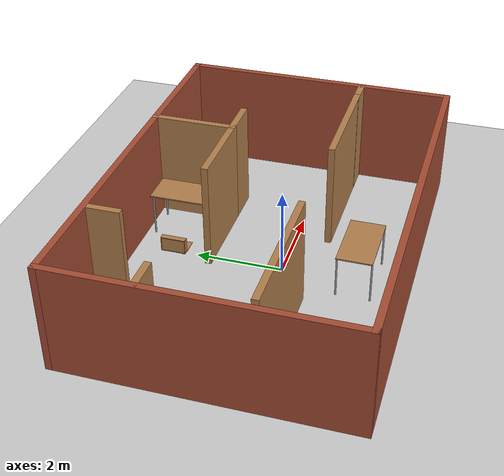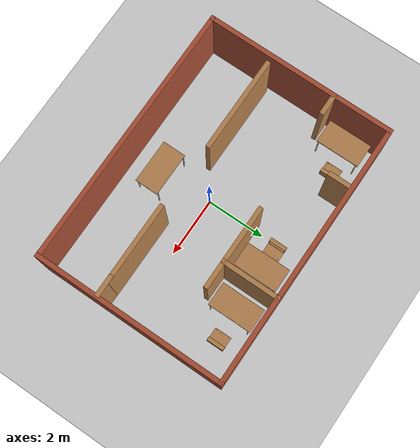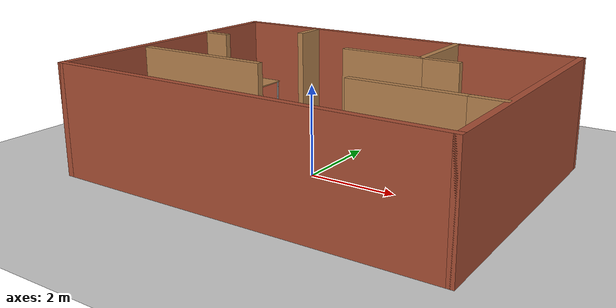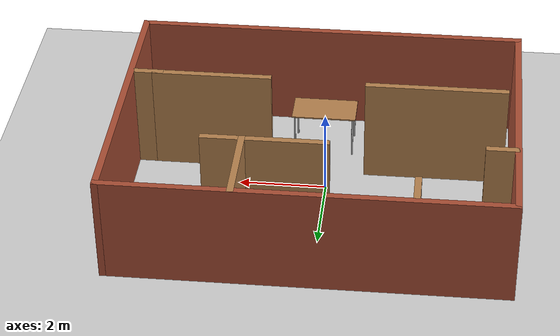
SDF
<sdf version="1.7">
 <world name="default">
  <light name="sun" type="directional">
   <pose>0 0 10 0 -0 0</pose>
   <diffuse>0.8 0.8 0.8 1</diffuse>
   <specular>0.2 0.2 0.2 1</specular>
   <attenuation>
    <range>1000</range>
    <constant>0.9</constant>
    <linear>0.01</linear>
    <quadratic>0.001</quadratic>
   </attenuation>
   <direction>-0.5 0.1 -0.9</direction>
   <spot><inner_angle>0</inner_angle><outer_angle>0</outer_angle><falloff>0</falloff></spot>
  </light>
  <model name="ground_plane">
   <static>1</static>
   <link name="link">
    <collision name="collision">
     <geometry><plane><normal>0 0 1</normal><size>100 100</size></plane></geometry>
     <surface><friction><ode><mu>100</mu><mu2>50</mu2></ode></friction></surface>
    </collision>
    <visual name="visual">
     <cast_shadows>0</cast_shadows>
     <geometry><plane><normal>0 0 1</normal><size>100 100</size></plane></geometry>
     <material>
      <script><uri>file://media/materials/scripts/gazebo.material</uri><name>Gazebo/Grey</name></script>
     </material>
    </visual>
   </link>
  </model>
  <gravity>0 0 -9.8</gravity>
  <magnetic_field>6e-06 2.3e-05 -4.2e-05</magnetic_field>
  <atmosphere type="adiabatic"/>
  <physics type="ode">
   <max_step_size>0.001</max_step_size>
   <real_time_factor>1</real_time_factor>
   <real_time_update_rate>1000</real_time_update_rate>
  </physics>
  <scene><ambient>0.4 0.4 0.4 1</ambient><background>0.7 0.7 0.7 1</background><shadows>1</shadows></scene>
  <audio><device>default</device></audio>
  <spherical_coordinates>
   <surface_model>EARTH_WGS84</surface_model>
   <latitude_deg>0</latitude_deg>
   <longitude_deg>0</longitude_deg>
   <elevation>0</elevation>
   <heading_deg>0</heading_deg>
  </spherical_coordinates>
  <model name="resworld">
   <pose>0.11808 0.137931 0 0 -0 0</pose>
   <link name="Wall_12">
    <collision name="Wall_12_Collision">
     <geometry><box><size>0.75 0.15 2.5</size></box></geometry>
     <pose>0 0 1.25 0 -0 0</pose>
    </collision>
    <visual name="Wall_12_Visual">
     <pose>0 0 1.25 0 -0 0</pose>
     <geometry><box><size>0.75 0.15 2.5</size></box></geometry>
     <material>
      <script><uri>file://media/materials/scripts/gazebo.material</uri><name>Gazebo/Wood</name></script>
      <ambient>1 1 1 1</ambient>
     </material>
     <meta><layer>0</layer></meta>
    </visual>
    <pose>4.055 -0.8875 0 0 -0 0</pose>
   </link>
   <link name="Wall_17">
    <collision name="Wall_17_Collision">
     <geometry><box><size>2 0.15 2.5</size></box></geometry>
     <pose>0 0 1.25 0 -0 0</pose>
    </collision>
    <visual name="Wall_17_Visual">
     <pose>0 0 1.25 0 -0 0</pose>
     <geometry><box><size>2 0.15 2.5</size></box></geometry>
     <material>
      <script><uri>file://media/materials/scripts/gazebo.material</uri><name>Gazebo/Wood</name></script>
      <ambient>1 1 1 1</ambient>
     </material>
     <meta><layer>0</layer></meta>
    </visual>
    <pose>1.565 2.4475 0 0 -0 -1.5708</pose>
   </link>
   <link name="Wall_19">
    <collision name="Wall_19_Collision">
     <geometry><box><size>0.75 0.15 2.5</size></box></geometry>
     <pose>0 0 1.25 0 -0 0</pose>
    </collision>
    <visual name="Wall_19_Visual">
     <pose>0 0 1.25 0 -0 0</pose>
     <geometry><box><size>0.75 0.15 2.5</size></box></geometry>
     <material>
      <script><uri>file://media/materials/scripts/gazebo.material</uri><name>Gazebo/Wood</name></script>
      <ambient>1 1 1 1</ambient>
     </material>
     <meta><layer>0</layer></meta>
    </visual>
    <pose>-4.095 1.4225 0 0 -0 0</pose>
   </link>
   <link name="Wall_23">
    <collision name="Wall_23_Collision">
     <geometry><box><size>2 0.15 2.5</size></box></geometry>
     <pose>0 0 1.25 0 -0 0</pose>
    </collision>
    <visual name="Wall_23_Visual">
     <pose>0 0 1.25 0 -0 0</pose>
     <geometry><box><size>2 0.15 2.5</size></box></geometry>
     <material>
      <script><uri>file://media/materials/scripts/gazebo.material</uri><name>Gazebo/Wood</name></script>
      <ambient>1 1 1 1</ambient>
     </material>
     <meta><layer>0</layer></meta>
    </visual>
    <pose>0.64 1.5225 0 0 -0 3.14159</pose>
   </link>
   <link name="Wall_26">
    <collision name="Wall_26_Collision">
     <geometry><box><size>1 0.15 2.5</size></box></geometry>
     <pose>0 0 1.25 0 -0 0</pose>
    </collision>
    <visual name="Wall_26_Visual">
     <pose>0 0 1.25 0 -0 0</pose>
     <geometry><box><size>1 0.15 2.5</size></box></geometry>
     <material>
      <script><uri>file://media/materials/scripts/gazebo.material</uri><name>Gazebo/Wood</name></script>
      <ambient>1 1 1 1</ambient>
     </material>
     <meta><layer>0</layer></meta>
    </visual>
    <pose>1.99 1.5225 0 0 -0 0</pose>
   </link>
   <link name="Wall_5">
    <collision name="Wall_5_Collision">
     <geometry><box><size>6.5 0.15 2.5</size></box></geometry>
     <pose>0 0 1.25 0 -0 0</pose>
    </collision>
    <visual name="Wall_5_Visual">
     <pose>0 0 1.25 0 -0 0</pose>
     <geometry><box><size>6.5 0.15 2.5</size></box></geometry>
     <material>
      <script><uri>file://media/materials/scripts/gazebo.material</uri><name>Gazebo/Bricks</name></script>
      <ambient>1 1 1 1</ambient>
     </material>
     <meta><layer>0</layer></meta>
    </visual>
    <pose>-4.425 0.2075 0 0 -0 -1.5708</pose>
   </link>
   <link name="Wall_6">
    <collision name="Wall_6_Collision">
     <geometry><box><size>9 0.15 2.5</size></box></geometry>
     <pose>0 0 1.25 0 -0 0</pose>
    </collision>
    <visual name="Wall_6_Visual">
     <pose>0 0 1.25 0 -0 0</pose>
     <geometry><box><size>9 0.15 2.5</size></box></geometry>
     <material>
      <script><uri>file://media/materials/scripts/gazebo.material</uri><name>Gazebo/Bricks</name></script>
      <ambient>1 1 1 1</ambient>
     </material>
     <meta><layer>0</layer></meta>
    </visual>
    <pose>0 -2.9675 0 0 -0 0</pose>
   </link>
   <link name="Wall_7">
    <collision name="Wall_7_Collision">
     <geometry><box><size>6.5 0.15 2.5</size></box></geometry>
     <pose>0 0 1.25 0 -0 0</pose>
    </collision>
    <visual name="Wall_7_Visual">
     <pose>0 0 1.25 0 -0 0</pose>
     <geometry><box><size>6.5 0.15 2.5</size></box></geometry>
     <material>
      <script><uri>file://media/materials/scripts/gazebo.material</uri><name>Gazebo/Bricks</name></script>
      <ambient>1 1 1 1</ambient>
     </material>
     <meta><layer>0</layer></meta>
    </visual>
    <pose>4.425 0.2075 0 0 -0 1.5708</pose>
   </link>
   <link name="Wall_8">
    <collision name="Wall_8_Collision">
     <geometry><box><size>9 0.15 2.5</size></box></geometry>
     <pose>0 0 1.25 0 -0 0</pose>
    </collision>
    <visual name="Wall_8_Visual">
     <pose>0 0 1.25 0 -0 0</pose>
     <geometry><box><size>9 0.15 2.5</size></box></geometry>
     <material>
      <script><uri>file://media/materials/scripts/gazebo.material</uri><name>Gazebo/Bricks</name></script>
      <ambient>1 1 1 1</ambient>
     </material>
     <meta><layer>0</layer></meta>
    </visual>
    <pose>0 3.3825 0 0 -0 3.14159</pose>
   </link>
   <static>1</static>
  </model>
  <model name="table">
   <static>1</static>
   <link name="link">
    <collision name="surface">
     <pose>0 0 1 0 -0 0</pose>
     <geometry><box><size>1.5 0.8 0.03</size></box></geometry>
     <surface><friction><ode><mu>0.6</mu><mu2>0.6</mu2></ode></friction></surface>
    </collision>
    <visual name="visual1">
     <pose>0 0 1 0 -0 0</pose>
     <geometry><box><size>1.5 0.8 0.03</size></box></geometry>
     <material>
      <script><uri>file://media/materials/scripts/gazebo.material</uri><name>Gazebo/Wood</name></script>
     </material>
    </visual>
    <collision name="front_left_leg">
     <pose>0.68 0.38 0.5 0 -0 0</pose>
     <geometry><cylinder><radius>0.02</radius><length>1</length></cylinder></geometry>
    </collision>
    <visual name="front_left_leg">
     <pose>0.68 0.38 0.5 0 -0 0</pose>
     <geometry><cylinder><radius>0.02</radius><length>1</length></cylinder></geometry>
     <material>
      <script><uri>file://media/materials/scripts/gazebo.material</uri><name>Gazebo/Grey</name></script>
     </material>
    </visual>
    <collision name="front_right_leg">
     <pose>0.68 -0.38 0.5 0 -0 0</pose>
     <geometry><cylinder><radius>0.02</radius><length>1</length></cylinder></geometry>
    </collision>
    <visual name="front_right_leg">
     <pose>0.68 -0.38 0.5 0 -0 0</pose>
     <geometry><cylinder><radius>0.02</radius><length>1</length></cylinder></geometry>
     <material>
      <script><uri>file://media/materials/scripts/gazebo.material</uri><name>Gazebo/Grey</name></script>
     </material>
    </visual>
    <collision name="back_right_leg">
     <pose>-0.68 -0.38 0.5 0 -0 0</pose>
     <geometry><cylinder><radius>0.02</radius><length>1</length></cylinder></geometry>
    </collision>
    <visual name="back_right_leg">
     <pose>-0.68 -0.38 0.5 0 -0 0</pose>
     <geometry><cylinder><radius>0.02</radius><length>1</length></cylinder></geometry>
     <material>
      <script><uri>file://media/materials/scripts/gazebo.material</uri><name>Gazebo/Grey</name></script>
     </material>
    </visual>
    <collision name="back_left_leg">
     <pose>-0.68 0.38 0.5 0 -0 0</pose>
     <geometry><cylinder><radius>0.02</radius><length>1</length></cylinder></geometry>
    </collision>
    <visual name="back_left_leg">
     <pose>-0.68 0.38 0.5 0 -0 0</pose>
     <geometry><cylinder><radius>0.02</radius><length>1</length></cylinder></geometry>
     <material>
      <script><uri>file://media/materials/scripts/gazebo.material</uri><name>Gazebo/Grey</name></script>
     </material>
    </visual>
   </link>
   <pose>2.40111 2.62285 0 0 0 -1.56768</pose>
  </model>
  <model name="table_clone">
   <static>1</static>
   <link name="link">
    <collision name="surface">
     <pose>0 0 1 0 -0 0</pose>
     <geometry><box><size>1.5 0.8 0.03</size></box></geometry>
     <surface><friction><ode><mu>0.6</mu><mu2>0.6</mu2></ode></friction></surface>
    </collision>
    <visual name="visual1">
     <pose>0 0 1 0 -0 0</pose>
     <geometry><box><size>1.5 0.8 0.03</size></box></geometry>
     <material>
      <script><uri>file://media/materials/scripts/gazebo.material</uri><name>Gazebo/Wood</name></script>
     </material>
    </visual>
    <collision name="front_left_leg">
     <pose>0.68 0.38 0.5 0 -0 0</pose>
     <geometry><cylinder><radius>0.02</radius><length>1</length></cylinder></geometry>
    </collision>
    <visual name="front_left_leg">
     <pose>0.68 0.38 0.5 0 -0 0</pose>
     <geometry><cylinder><radius>0.02</radius><length>1</length></cylinder></geometry>
     <material>
      <script><uri>file://media/materials/scripts/gazebo.material</uri><name>Gazebo/Grey</name></script>
     </material>
    </visual>
    <collision name="front_right_leg">
     <pose>0.68 -0.38 0.5 0 -0 0</pose>
     <geometry><cylinder><radius>0.02</radius><length>1</length></cylinder></geometry>
    </collision>
    <visual name="front_right_leg">
     <pose>0.68 -0.38 0.5 0 -0 0</pose>
     <geometry><cylinder><radius>0.02</radius><length>1</length></cylinder></geometry>
     <material>
      <script><uri>file://media/materials/scripts/gazebo.material</uri><name>Gazebo/Grey</name></script>
     </material>
    </visual>
    <collision name="back_right_leg">
     <pose>-0.68 -0.38 0.5 0 -0 0</pose>
     <geometry><cylinder><radius>0.02</radius><length>1</length></cylinder></geometry>
    </collision>
    <visual name="back_right_leg">
     <pose>-0.68 -0.38 0.5 0 -0 0</pose>
     <geometry><cylinder><radius>0.02</radius><length>1</length></cylinder></geometry>
     <material>
      <script><uri>file://media/materials/scripts/gazebo.material</uri><name>Gazebo/Grey</name></script>
     </material>
    </visual>
    <collision name="back_left_leg">
     <pose>-0.68 0.38 0.5 0 -0 0</pose>
     <geometry><cylinder><radius>0.02</radius><length>1</length></cylinder></geometry>
    </collision>
    <visual name="back_left_leg">
     <pose>-0.68 0.38 0.5 0 -0 0</pose>
     <geometry><cylinder><radius>0.02</radius><length>1</length></cylinder></geometry>
     <material>
      <script><uri>file://media/materials/scripts/gazebo.material</uri><name>Gazebo/Grey</name></script>
     </material>
    </visual>
   </link>
   <pose>0.971069 2.57066 0 0 0 -1.56768</pose>
  </model>
  <model name="table_clone_clone">
   <static>1</static>
   <link name="link">
    <collision name="surface">
     <pose>0 0 1 0 -0 0</pose>
     <geometry><box><size>1.5 0.8 0.03</size></box></geometry>
     <surface><friction><ode><mu>0.6</mu><mu2>0.6</mu2></ode></friction></surface>
    </collision>
    <visual name="visual1">
     <pose>0 0 1 0 -0 0</pose>
     <geometry><box><size>1.5 0.8 0.03</size></box></geometry>
     <material>
      <script><uri>file://media/materials/scripts/gazebo.material</uri><name>Gazebo/Wood</name></script>
     </material>
    </visual>
    <collision name="front_left_leg">
     <pose>0.68 0.38 0.5 0 -0 0</pose>
     <geometry><cylinder><radius>0.02</radius><length>1</length></cylinder></geometry>
    </collision>
    <visual name="front_left_leg">
     <pose>0.68 0.38 0.5 0 -0 0</pose>
     <geometry><cylinder><radius>0.02</radius><length>1</length></cylinder></geometry>
     <material>
      <script><uri>file://media/materials/scripts/gazebo.material</uri><name>Gazebo/Grey</name></script>
     </material>
    </visual>
    <collision name="front_right_leg">
     <pose>0.68 -0.38 0.5 0 -0 0</pose>
     <geometry><cylinder><radius>0.02</radius><length>1</length></cylinder></geometry>
    </collision>
    <visual name="front_right_leg">
     <pose>0.68 -0.38 0.5 0 -0 0</pose>
     <geometry><cylinder><radius>0.02</radius><length>1</length></cylinder></geometry>
     <material>
      <script><uri>file://media/materials/scripts/gazebo.material</uri><name>Gazebo/Grey</name></script>
     </material>
    </visual>
    <collision name="back_right_leg">
     <pose>-0.68 -0.38 0.5 0 -0 0</pose>
     <geometry><cylinder><radius>0.02</radius><length>1</length></cylinder></geometry>
    </collision>
    <visual name="back_right_leg">
     <pose>-0.68 -0.38 0.5 0 -0 0</pose>
     <geometry><cylinder><radius>0.02</radius><length>1</length></cylinder></geometry>
     <material>
      <script><uri>file://media/materials/scripts/gazebo.material</uri><name>Gazebo/Grey</name></script>
     </material>
    </visual>
    <collision name="back_left_leg">
     <pose>-0.68 0.38 0.5 0 -0 0</pose>
     <geometry><cylinder><radius>0.02</radius><length>1</length></cylinder></geometry>
    </collision>
    <visual name="back_left_leg">
     <pose>-0.68 0.38 0.5 0 -0 0</pose>
     <geometry><cylinder><radius>0.02</radius><length>1</length></cylinder></geometry>
     <material>
      <script><uri>file://media/materials/scripts/gazebo.material</uri><name>Gazebo/Grey</name></script>
     </material>
    </visual>
   </link>
   <pose>-3.69897 2.52096 0 0 0 -1.56768</pose>
  </model>
  <model name="table_clone_clone_0">
   <static>1</static>
   <link name="link">
    <collision name="surface">
     <pose>0 0 1 0 -0 0</pose>
     <geometry><box><size>1.5 0.8 0.03</size></box></geometry>
     <surface><friction><ode><mu>0.6</mu><mu2>0.6</mu2></ode></friction></surface>
    </collision>
    <visual name="visual1">
     <pose>0 0 1 0 -0 0</pose>
     <geometry><box><size>1.5 0.8 0.03</size></box></geometry>
     <material>
      <script><uri>file://media/materials/scripts/gazebo.material</uri><name>Gazebo/Wood</name></script>
     </material>
    </visual>
    <collision name="front_left_leg">
     <pose>0.68 0.38 0.5 0 -0 0</pose>
     <geometry><cylinder><radius>0.02</radius><length>1</length></cylinder></geometry>
    </collision>
    <visual name="front_left_leg">
     <pose>0.68 0.38 0.5 0 -0 0</pose>
     <geometry><cylinder><radius>0.02</radius><length>1</length></cylinder></geometry>
     <material>
      <script><uri>file://media/materials/scripts/gazebo.material</uri><name>Gazebo/Grey</name></script>
     </material>
    </visual>
    <collision name="front_right_leg">
     <pose>0.68 -0.38 0.5 0 -0 0</pose>
     <geometry><cylinder><radius>0.02</radius><length>1</length></cylinder></geometry>
    </collision>
    <visual name="front_right_leg">
     <pose>0.68 -0.38 0.5 0 -0 0</pose>
     <geometry><cylinder><radius>0.02</radius><length>1</length></cylinder></geometry>
     <material>
      <script><uri>file://media/materials/scripts/gazebo.material</uri><name>Gazebo/Grey</name></script>
     </material>
    </visual>
    <collision name="back_right_leg">
     <pose>-0.68 -0.38 0.5 0 -0 0</pose>
     <geometry><cylinder><radius>0.02</radius><length>1</length></cylinder></geometry>
    </collision>
    <visual name="back_right_leg">
     <pose>-0.68 -0.38 0.5 0 -0 0</pose>
     <geometry><cylinder><radius>0.02</radius><length>1</length></cylinder></geometry>
     <material>
      <script><uri>file://media/materials/scripts/gazebo.material</uri><name>Gazebo/Grey</name></script>
     </material>
    </visual>
    <collision name="back_left_leg">
     <pose>-0.68 0.38 0.5 0 -0 0</pose>
     <geometry><cylinder><radius>0.02</radius><length>1</length></cylinder></geometry>
    </collision>
    <visual name="back_left_leg">
     <pose>-0.68 0.38 0.5 0 -0 0</pose>
     <geometry><cylinder><radius>0.02</radius><length>1</length></cylinder></geometry>
     <material>
      <script><uri>file://media/materials/scripts/gazebo.material</uri><name>Gazebo/Grey</name></script>
     </material>
    </visual>
   </link>
   <pose>0.159687 -1.73006 0 0 -0 3.13719</pose>
  </model>
  <model name="wooden_case_wooden_peg">
   <frame name="wooden_case::__model__" attached_to="wooden_case::base">
    <pose relative_to="__model__">0 0 0 0 -0 0</pose>
   </frame>
   <link name="wooden_case::base">
    <pose relative_to="wooden_case::__model__">0 0 0.024 0 -0 0</pose>
    <inertial>
     <pose>-0.022184 0 0.171592 0 -0 0</pose>
     <mass>3.96264</mass>
     <inertia>
      <ixx>0.213536</ixx>
      <ixy>0</ixy>
      <ixz>0.000779377</ixz>
      <iyy>0.0708943</iyy>
      <iyz>0</iyz>
      <izz>0.154604</izz>
     </inertia>
    </inertial>
    <collision name="collision_back">
     <pose>-0.053975 0 0.1778 0 -0 0</pose>
     <geometry><box><size>0.01905 0.5461 0.3175</size></box></geometry>
     <surface>
      <contact>
       <poissons_ratio>0.347</poissons_ratio>
       <elastic_modulus>8.8e+09</elastic_modulus>
       <ode><kp>100000</kp><kd>100</kd><max_vel>100</max_vel><min_depth>0.001</min_depth></ode>
      </contact>
      <friction>
       <torsional>
        <coefficient>1</coefficient>
        <use_patch_radius>0</use_patch_radius>
        <surface_radius>0.01</surface_radius>
       </torsional>
      </friction>
     </surface>
    </collision>
    <visual name="visual_back">
     <pose>-0.053975 0 0.1778 0 -0 0</pose>
     <geometry><box><size>0.01905 0.5461 0.3175</size></box></geometry>
     <material>
      <script><uri>file://media/materials/scripts/gazebo.material</uri><name>Gazebo/Wood</name></script>
     </material>
    </visual>
    <collision name="collision_bottom">
     <pose>0 0 0.009525 0 -0 0</pose>
     <geometry><box><size>0.127 0.5842 0.01905</size></box></geometry>
     <surface>
      <contact>
       <poissons_ratio>0.347</poissons_ratio>
       <elastic_modulus>8.8e+09</elastic_modulus>
       <ode><kp>100000</kp><kd>100</kd><max_vel>100</max_vel><min_depth>0.001</min_depth></ode>
      </contact>
      <friction>
       <torsional>
        <coefficient>1</coefficient>
        <use_patch_radius>0</use_patch_radius>
        <surface_radius>0.01</surface_radius>
       </torsional>
      </friction>
     </surface>
    </collision>
    <visual name="visual_bottom">
     <pose>0 0 0.009525 0 -0 0</pose>
     <geometry><box><size>0.127 0.5842 0.01905</size></box></geometry>
     <material>
      <script><uri>file://media/materials/scripts/gazebo.material</uri><name>Gazebo/Wood</name></script>
     </material>
    </visual>
    <collision name="collision_top">
     <pose>0 0 0.346075 0 -0 0</pose>
     <geometry><box><size>0.127 0.5842 0.01905</size></box></geometry>
     <surface>
      <contact>
       <poissons_ratio>0.347</poissons_ratio>
       <elastic_modulus>8.8e+09</elastic_modulus>
       <ode><kp>100000</kp><kd>100</kd><max_vel>100</max_vel><min_depth>0.001</min_depth></ode>
      </contact>
      <friction>
       <torsional>
        <coefficient>1</coefficient>
        <use_patch_radius>0</use_patch_radius>
        <surface_radius>0.01</surface_radius>
       </torsional>
      </friction>
     </surface>
    </collision>
    <visual name="visual_top">
     <pose>0 0 0.346075 0 -0 0</pose>
     <geometry><box><size>0.127 0.5842 0.01905</size></box></geometry>
     <material>
      <script><uri>file://media/materials/scripts/gazebo.material</uri><name>Gazebo/Wood</name></script>
     </material>
    </visual>
    <collision name="collision_left">
     <pose>0 -0.282575 0.1778 0 -0 0</pose>
     <geometry><box><size>0.127 0.01905 0.3175</size></box></geometry>
     <surface>
      <contact>
       <poissons_ratio>0.347</poissons_ratio>
       <elastic_modulus>8.8e+09</elastic_modulus>
       <ode><kp>100000</kp><kd>100</kd><max_vel>100</max_vel><min_depth>0.001</min_depth></ode>
      </contact>
      <friction>
       <torsional>
        <coefficient>1</coefficient>
        <use_patch_radius>0</use_patch_radius>
        <surface_radius>0.01</surface_radius>
       </torsional>
      </friction>
     </surface>
    </collision>
    <visual name="visual_left">
     <pose>0 -0.282575 0.1778 0 -0 0</pose>
     <geometry><box><size>0.127 0.01905 0.3175</size></box></geometry>
     <material>
      <script><uri>file://media/materials/scripts/gazebo.material</uri><name>Gazebo/Wood</name></script>
     </material>
    </visual>
    <collision name="collision_right">
     <pose>0 0.282575 0.1778 0 -0 0</pose>
     <geometry><box><size>0.127 0.01905 0.3175</size></box></geometry>
     <surface>
      <contact>
       <poissons_ratio>0.347</poissons_ratio>
       <elastic_modulus>8.8e+09</elastic_modulus>
       <ode><kp>100000</kp><kd>100</kd><max_vel>100</max_vel><min_depth>0.001</min_depth></ode>
      </contact>
      <friction>
       <torsional>
        <coefficient>1</coefficient>
        <use_patch_radius>0</use_patch_radius>
        <surface_radius>0.01</surface_radius>
       </torsional>
      </friction>
     </surface>
    </collision>
    <visual name="visual_right">
     <pose>0 0.282575 0.1778 0 -0 0</pose>
     <geometry><box><size>0.127 0.01905 0.3175</size></box></geometry>
     <material>
      <script><uri>file://media/materials/scripts/gazebo.material</uri><name>Gazebo/Wood</name></script>
     </material>
    </visual>
    <collision name="collision_block_left">
     <pose>0.0095 -0.2151 -0.012 0 -0 0</pose>
     <geometry><box><size>0.108 0.05 0.024</size></box></geometry>
     <surface>
      <contact>
       <poissons_ratio>0.347</poissons_ratio>
       <elastic_modulus>8.8e+09</elastic_modulus>
       <ode><kp>100000</kp><kd>100</kd><max_vel>100</max_vel><min_depth>0.001</min_depth></ode>
      </contact>
      <friction>
       <torsional>
        <coefficient>1</coefficient>
        <use_patch_radius>0</use_patch_radius>
        <surface_radius>0.01</surface_radius>
       </torsional>
      </friction>
     </surface>
    </collision>
    <visual name="visual_block_left">
     <pose>0.0095 -0.2151 -0.012 0 -0 0</pose>
     <geometry><box><size>0.108 0.05 0.024</size></box></geometry>
     <material>
      <script><uri>file://media/materials/scripts/gazebo.material</uri><name>Gazebo/Wood</name></script>
     </material>
    </visual>
    <collision name="collision_block_right">
     <pose>0.0095 0.2151 -0.012 0 -0 0</pose>
     <geometry><box><size>0.108 0.05 0.024</size></box></geometry>
     <surface>
      <contact>
       <poissons_ratio>0.347</poissons_ratio>
       <elastic_modulus>8.8e+09</elastic_modulus>
       <ode><kp>100000</kp><kd>100</kd><max_vel>100</max_vel><min_depth>0.001</min_depth></ode>
      </contact>
      <friction>
       <torsional>
        <coefficient>1</coefficient>
        <use_patch_radius>0</use_patch_radius>
        <surface_radius>0.01</surface_radius>
       </torsional>
      </friction>
     </surface>
    </collision>
    <visual name="visual_block_right">
     <pose>0.0095 0.2151 -0.012 0 -0 0</pose>
     <geometry><box><size>0.108 0.05 0.024</size></box></geometry>
     <material>
      <script><uri>file://media/materials/scripts/gazebo.material</uri><name>Gazebo/Wood</name></script>
     </material>
    </visual>
   </link>
   <link name="wooden_case::lid">
    <pose relative_to="wooden_case::__model__">0.243775 0 0.009525 0 -0 0</pose>
    <inertial>
     <mass>1.97874</mass>
     <inertia>
      <ixx>0.0563367</ixx>
      <ixy>0</ixy>
      <ixz>0</ixz>
      <iyy>0.020911</iyy>
      <iyz>0</iyz>
      <izz>0.0771281</izz>
     </inertia>
    </inertial>
    <collision name="collision">
     <geometry><box><size>0.3556 0.5842 0.01905</size></box></geometry>
     <surface>
      <contact>
       <poissons_ratio>0.347</poissons_ratio>
       <elastic_modulus>8.8e+09</elastic_modulus>
       <ode><kp>100000</kp><kd>100</kd><max_vel>100</max_vel><min_depth>0.001</min_depth></ode>
      </contact>
      <friction>
       <torsional>
        <coefficient>1</coefficient>
        <use_patch_radius>0</use_patch_radius>
        <surface_radius>0.01</surface_radius>
       </torsional>
      </friction>
     </surface>
    </collision>
    <visual name="visual">
     <geometry><box><size>0.3556 0.5842 0.01905</size></box></geometry>
     <material>
      <script><uri>file://media/materials/scripts/gazebo.material</uri><name>Gazebo/Wood</name></script>
     </material>
    </visual>
    <visual name="tee_nut_1">
     <pose>0.122 -0.216 0 0 -0 0</pose>
     <geometry><cylinder><radius>0.00635</radius><length>0.0192405</length></cylinder></geometry>
     <material>
      <script><uri>file://media/materials/scripts/gazebo.material</uri><name>Gazebo/Grey</name></script>
     </material>
    </visual>
    <visual name="tee_nut_2">
     <pose>0.122 -0.088 0 0 -0 0</pose>
     <geometry><cylinder><radius>0.00635</radius><length>0.0192405</length></cylinder></geometry>
     <material>
      <script><uri>file://media/materials/scripts/gazebo.material</uri><name>Gazebo/Grey</name></script>
     </material>
    </visual>
    <visual name="tee_nut_3">
     <pose>0.122 0.088 0 0 -0 0</pose>
     <geometry><cylinder><radius>0.00635</radius><length>0.0192405</length></cylinder></geometry>
     <material>
      <script><uri>file://media/materials/scripts/gazebo.material</uri><name>Gazebo/Grey</name></script>
     </material>
    </visual>
    <visual name="tee_nut_4">
     <pose>0.122 0.216 0 0 -0 0</pose>
     <geometry><cylinder><radius>0.00635</radius><length>0.0192405</length></cylinder></geometry>
     <material>
      <script><uri>file://media/materials/scripts/gazebo.material</uri><name>Gazebo/Grey</name></script>
     </material>
    </visual>
   </link>
   <joint name="wooden_case::lid_hinge" type="revolute">
    <pose>-0.1778 0 0.01905 0 -0 0</pose>
    <parent>wooden_case::base</parent>
    <child>wooden_case::lid</child>
    <axis>
     <xyz>0 1 0</xyz>
     <limit><upper>0.523599</upper><lower>-1.5708</lower></limit>
     <dynamics><spring_reference>0</spring_reference><spring_stiffness>0</spring_stiffness></dynamics>
    </axis>
   </joint>
   <frame name="peg::__model__" attached_to="peg::link">
    <pose relative_to="__model__">0.365774 0.216 0.01905 0 -0 0</pose>
   </frame>
   <link name="peg::link">
    <pose relative_to="peg::__model__">0 0 0.04 0 -0 0</pose>
    <inertial>
     <mass>0.0175</mass>
     <inertia>
      <ixx>9.74923e-06</ixx>
      <ixy>0</ixy>
      <ixz>0</ixz>
      <iyy>9.74923e-06</iyy>
      <iyz>0</iyz>
      <izz>8.31797e-07</izz>
     </inertia>
    </inertial>
    <collision name="collision">
     <geometry><cylinder><radius>0.00975</radius><length>0.08</length></cylinder></geometry>
     <surface>
      <contact>
       <poissons_ratio>0.347</poissons_ratio>
       <elastic_modulus>8.8e+09</elastic_modulus>
       <ode><kp>100000</kp><kd>100</kd><max_vel>100</max_vel><min_depth>0.001</min_depth></ode>
      </contact>
      <friction>
       <torsional>
        <coefficient>1</coefficient>
        <use_patch_radius>0</use_patch_radius>
        <surface_radius>0.01</surface_radius>
       </torsional>
      </friction>
     </surface>
    </collision>
    <visual name="visual">
     <geometry><cylinder><radius>0.00975</radius><length>0.08</length></cylinder></geometry>
     <material>
      <script><uri>file://media/materials/scripts/gazebo.material</uri><name>Gazebo/Wood</name></script>
     </material>
    </visual>
   </link>
   <joint name="case_peg" type="revolute">
    <child>peg::link</child>
    <parent>wooden_case::lid</parent>
    <axis>
     <xyz>0 0 1</xyz>
     <limit><upper>0</upper><lower>0</lower></limit>
     <dynamics><spring_reference>0</spring_reference><spring_stiffness>0</spring_stiffness></dynamics>
    </axis>
   </joint>
   <pose>-0.019223 2.56146 -0.001057 -1e-06 -0.000429 0</pose>
  </model>
  <model name="wooden_case_wooden_peg_clone">
   <frame name="wooden_case::__model__" attached_to="wooden_case::base">
    <pose relative_to="__model__">0 0 0 0 -0 0</pose>
   </frame>
   <link name="wooden_case::base">
    <pose relative_to="wooden_case::__model__">0 0 0.024 0 -0 0</pose>
    <inertial>
     <pose>-0.022184 0 0.171592 0 -0 0</pose>
     <mass>3.96264</mass>
     <inertia>
      <ixx>0.213536</ixx>
      <ixy>0</ixy>
      <ixz>0.000779377</ixz>
      <iyy>0.0708943</iyy>
      <iyz>0</iyz>
      <izz>0.154604</izz>
     </inertia>
    </inertial>
    <collision name="collision_back">
     <pose>-0.053975 0 0.1778 0 -0 0</pose>
     <geometry><box><size>0.01905 0.5461 0.3175</size></box></geometry>
     <surface>
      <contact>
       <poissons_ratio>0.347</poissons_ratio>
       <elastic_modulus>8.8e+09</elastic_modulus>
       <ode><kp>100000</kp><kd>100</kd><max_vel>100</max_vel><min_depth>0.001</min_depth></ode>
      </contact>
      <friction>
       <torsional>
        <coefficient>1</coefficient>
        <use_patch_radius>0</use_patch_radius>
        <surface_radius>0.01</surface_radius>
       </torsional>
      </friction>
     </surface>
    </collision>
    <visual name="visual_back">
     <pose>-0.053975 0 0.1778 0 -0 0</pose>
     <geometry><box><size>0.01905 0.5461 0.3175</size></box></geometry>
     <material>
      <script><uri>file://media/materials/scripts/gazebo.material</uri><name>Gazebo/Wood</name></script>
     </material>
    </visual>
    <collision name="collision_bottom">
     <pose>0 0 0.009525 0 -0 0</pose>
     <geometry><box><size>0.127 0.5842 0.01905</size></box></geometry>
     <surface>
      <contact>
       <poissons_ratio>0.347</poissons_ratio>
       <elastic_modulus>8.8e+09</elastic_modulus>
       <ode><kp>100000</kp><kd>100</kd><max_vel>100</max_vel><min_depth>0.001</min_depth></ode>
      </contact>
      <friction>
       <torsional>
        <coefficient>1</coefficient>
        <use_patch_radius>0</use_patch_radius>
        <surface_radius>0.01</surface_radius>
       </torsional>
      </friction>
     </surface>
    </collision>
    <visual name="visual_bottom">
     <pose>0 0 0.009525 0 -0 0</pose>
     <geometry><box><size>0.127 0.5842 0.01905</size></box></geometry>
     <material>
      <script><uri>file://media/materials/scripts/gazebo.material</uri><name>Gazebo/Wood</name></script>
     </material>
    </visual>
    <collision name="collision_top">
     <pose>0 0 0.346075 0 -0 0</pose>
     <geometry><box><size>0.127 0.5842 0.01905</size></box></geometry>
     <surface>
      <contact>
       <poissons_ratio>0.347</poissons_ratio>
       <elastic_modulus>8.8e+09</elastic_modulus>
       <ode><kp>100000</kp><kd>100</kd><max_vel>100</max_vel><min_depth>0.001</min_depth></ode>
      </contact>
      <friction>
       <torsional>
        <coefficient>1</coefficient>
        <use_patch_radius>0</use_patch_radius>
        <surface_radius>0.01</surface_radius>
       </torsional>
      </friction>
     </surface>
    </collision>
    <visual name="visual_top">
     <pose>0 0 0.346075 0 -0 0</pose>
     <geometry><box><size>0.127 0.5842 0.01905</size></box></geometry>
     <material>
      <script><uri>file://media/materials/scripts/gazebo.material</uri><name>Gazebo/Wood</name></script>
     </material>
    </visual>
    <collision name="collision_left">
     <pose>0 -0.282575 0.1778 0 -0 0</pose>
     <geometry><box><size>0.127 0.01905 0.3175</size></box></geometry>
     <surface>
      <contact>
       <poissons_ratio>0.347</poissons_ratio>
       <elastic_modulus>8.8e+09</elastic_modulus>
       <ode><kp>100000</kp><kd>100</kd><max_vel>100</max_vel><min_depth>0.001</min_depth></ode>
      </contact>
      <friction>
       <torsional>
        <coefficient>1</coefficient>
        <use_patch_radius>0</use_patch_radius>
        <surface_radius>0.01</surface_radius>
       </torsional>
      </friction>
     </surface>
    </collision>
    <visual name="visual_left">
     <pose>0 -0.282575 0.1778 0 -0 0</pose>
     <geometry><box><size>0.127 0.01905 0.3175</size></box></geometry>
     <material>
      <script><uri>file://media/materials/scripts/gazebo.material</uri><name>Gazebo/Wood</name></script>
     </material>
    </visual>
    <collision name="collision_right">
     <pose>0 0.282575 0.1778 0 -0 0</pose>
     <geometry><box><size>0.127 0.01905 0.3175</size></box></geometry>
     <surface>
      <contact>
       <poissons_ratio>0.347</poissons_ratio>
       <elastic_modulus>8.8e+09</elastic_modulus>
       <ode><kp>100000</kp><kd>100</kd><max_vel>100</max_vel><min_depth>0.001</min_depth></ode>
      </contact>
      <friction>
       <torsional>
        <coefficient>1</coefficient>
        <use_patch_radius>0</use_patch_radius>
        <surface_radius>0.01</surface_radius>
       </torsional>
      </friction>
     </surface>
    </collision>
    <visual name="visual_right">
     <pose>0 0.282575 0.1778 0 -0 0</pose>
     <geometry><box><size>0.127 0.01905 0.3175</size></box></geometry>
     <material>
      <script><uri>file://media/materials/scripts/gazebo.material</uri><name>Gazebo/Wood</name></script>
     </material>
    </visual>
    <collision name="collision_block_left">
     <pose>0.0095 -0.2151 -0.012 0 -0 0</pose>
     <geometry><box><size>0.108 0.05 0.024</size></box></geometry>
     <surface>
      <contact>
       <poissons_ratio>0.347</poissons_ratio>
       <elastic_modulus>8.8e+09</elastic_modulus>
       <ode><kp>100000</kp><kd>100</kd><max_vel>100</max_vel><min_depth>0.001</min_depth></ode>
      </contact>
      <friction>
       <torsional>
        <coefficient>1</coefficient>
        <use_patch_radius>0</use_patch_radius>
        <surface_radius>0.01</surface_radius>
       </torsional>
      </friction>
     </surface>
    </collision>
    <visual name="visual_block_left">
     <pose>0.0095 -0.2151 -0.012 0 -0 0</pose>
     <geometry><box><size>0.108 0.05 0.024</size></box></geometry>
     <material>
      <script><uri>file://media/materials/scripts/gazebo.material</uri><name>Gazebo/Wood</name></script>
     </material>
    </visual>
    <collision name="collision_block_right">
     <pose>0.0095 0.2151 -0.012 0 -0 0</pose>
     <geometry><box><size>0.108 0.05 0.024</size></box></geometry>
     <surface>
      <contact>
       <poissons_ratio>0.347</poissons_ratio>
       <elastic_modulus>8.8e+09</elastic_modulus>
       <ode><kp>100000</kp><kd>100</kd><max_vel>100</max_vel><min_depth>0.001</min_depth></ode>
      </contact>
      <friction>
       <torsional>
        <coefficient>1</coefficient>
        <use_patch_radius>0</use_patch_radius>
        <surface_radius>0.01</surface_radius>
       </torsional>
      </friction>
     </surface>
    </collision>
    <visual name="visual_block_right">
     <pose>0.0095 0.2151 -0.012 0 -0 0</pose>
     <geometry><box><size>0.108 0.05 0.024</size></box></geometry>
     <material>
      <script><uri>file://media/materials/scripts/gazebo.material</uri><name>Gazebo/Wood</name></script>
     </material>
    </visual>
   </link>
   <link name="wooden_case::lid">
    <pose relative_to="wooden_case::__model__">0.243775 0 0.009525 0 -0 0</pose>
    <inertial>
     <mass>1.97874</mass>
     <inertia>
      <ixx>0.0563367</ixx>
      <ixy>0</ixy>
      <ixz>0</ixz>
      <iyy>0.020911</iyy>
      <iyz>0</iyz>
      <izz>0.0771281</izz>
     </inertia>
    </inertial>
    <collision name="collision">
     <geometry><box><size>0.3556 0.5842 0.01905</size></box></geometry>
     <surface>
      <contact>
       <poissons_ratio>0.347</poissons_ratio>
       <elastic_modulus>8.8e+09</elastic_modulus>
       <ode><kp>100000</kp><kd>100</kd><max_vel>100</max_vel><min_depth>0.001</min_depth></ode>
      </contact>
      <friction>
       <torsional>
        <coefficient>1</coefficient>
        <use_patch_radius>0</use_patch_radius>
        <surface_radius>0.01</surface_radius>
       </torsional>
      </friction>
     </surface>
    </collision>
    <visual name="visual">
     <geometry><box><size>0.3556 0.5842 0.01905</size></box></geometry>
     <material>
      <script><uri>file://media/materials/scripts/gazebo.material</uri><name>Gazebo/Wood</name></script>
     </material>
    </visual>
    <visual name="tee_nut_1">
     <pose>0.122 -0.216 0 0 -0 0</pose>
     <geometry><cylinder><radius>0.00635</radius><length>0.0192405</length></cylinder></geometry>
     <material>
      <script><uri>file://media/materials/scripts/gazebo.material</uri><name>Gazebo/Grey</name></script>
     </material>
    </visual>
    <visual name="tee_nut_2">
     <pose>0.122 -0.088 0 0 -0 0</pose>
     <geometry><cylinder><radius>0.00635</radius><length>0.0192405</length></cylinder></geometry>
     <material>
      <script><uri>file://media/materials/scripts/gazebo.material</uri><name>Gazebo/Grey</name></script>
     </material>
    </visual>
    <visual name="tee_nut_3">
     <pose>0.122 0.088 0 0 -0 0</pose>
     <geometry><cylinder><radius>0.00635</radius><length>0.0192405</length></cylinder></geometry>
     <material>
      <script><uri>file://media/materials/scripts/gazebo.material</uri><name>Gazebo/Grey</name></script>
     </material>
    </visual>
    <visual name="tee_nut_4">
     <pose>0.122 0.216 0 0 -0 0</pose>
     <geometry><cylinder><radius>0.00635</radius><length>0.0192405</length></cylinder></geometry>
     <material>
      <script><uri>file://media/materials/scripts/gazebo.material</uri><name>Gazebo/Grey</name></script>
     </material>
    </visual>
   </link>
   <joint name="wooden_case::lid_hinge" type="revolute">
    <pose>-0.1778 0 0.01905 0 -0 0</pose>
    <parent>wooden_case::base</parent>
    <child>wooden_case::lid</child>
    <axis>
     <xyz>0 1 0</xyz>
     <limit><upper>0.523599</upper><lower>-1.5708</lower></limit>
     <dynamics><spring_reference>0</spring_reference><spring_stiffness>0</spring_stiffness></dynamics>
    </axis>
   </joint>
   <frame name="peg::__model__" attached_to="peg::link">
    <pose relative_to="__model__">0.365774 0.216 0.01905 0 -0 0</pose>
   </frame>
   <link name="peg::link">
    <pose relative_to="peg::__model__">0 0 0.04 0 -0 0</pose>
    <inertial>
     <mass>0.0175</mass>
     <inertia>
      <ixx>9.74923e-06</ixx>
      <ixy>0</ixy>
      <ixz>0</ixz>
      <iyy>9.74923e-06</iyy>
      <iyz>0</iyz>
      <izz>8.31797e-07</izz>
     </inertia>
    </inertial>
    <collision name="collision">
     <geometry><cylinder><radius>0.00975</radius><length>0.08</length></cylinder></geometry>
     <surface>
      <contact>
       <poissons_ratio>0.347</poissons_ratio>
       <elastic_modulus>8.8e+09</elastic_modulus>
       <ode><kp>100000</kp><kd>100</kd><max_vel>100</max_vel><min_depth>0.001</min_depth></ode>
      </contact>
      <friction>
       <torsional>
        <coefficient>1</coefficient>
        <use_patch_radius>0</use_patch_radius>
        <surface_radius>0.01</surface_radius>
       </torsional>
      </friction>
     </surface>
    </collision>
    <visual name="visual">
     <geometry><cylinder><radius>0.00975</radius><length>0.08</length></cylinder></geometry>
     <material>
      <script><uri>file://media/materials/scripts/gazebo.material</uri><name>Gazebo/Wood</name></script>
     </material>
    </visual>
   </link>
   <joint name="case_peg" type="revolute">
    <child>peg::link</child>
    <parent>wooden_case::lid</parent>
    <axis>
     <xyz>0 0 1</xyz>
     <limit><upper>0</upper><lower>0</lower></limit>
     <dynamics><spring_reference>0</spring_reference><spring_stiffness>0</spring_stiffness></dynamics>
    </axis>
   </joint>
   <pose>3.58722 2.68888 -0.001057 0 -0.00043 -3.13813</pose>
  </model>
  <model name="wooden_case_wooden_peg_clone_clone">
   <frame name="wooden_case::__model__" attached_to="wooden_case::base">
    <pose relative_to="__model__">0 0 0 0 -0 0</pose>
   </frame>
   <link name="wooden_case::base">
    <pose relative_to="wooden_case::__model__">0 0 0.024 0 -0 0</pose>
    <inertial>
     <pose>-0.022184 0 0.171592 0 -0 0</pose>
     <mass>3.96264</mass>
     <inertia>
      <ixx>0.213536</ixx>
      <ixy>0</ixy>
      <ixz>0.000779377</ixz>
      <iyy>0.0708943</iyy>
      <iyz>0</iyz>
      <izz>0.154604</izz>
     </inertia>
    </inertial>
    <collision name="collision_back">
     <pose>-0.053975 0 0.1778 0 -0 0</pose>
     <geometry><box><size>0.01905 0.5461 0.3175</size></box></geometry>
     <surface>
      <contact>
       <poissons_ratio>0.347</poissons_ratio>
       <elastic_modulus>8.8e+09</elastic_modulus>
       <ode><kp>100000</kp><kd>100</kd><max_vel>100</max_vel><min_depth>0.001</min_depth></ode>
      </contact>
      <friction>
       <torsional>
        <coefficient>1</coefficient>
        <use_patch_radius>0</use_patch_radius>
        <surface_radius>0.01</surface_radius>
       </torsional>
      </friction>
     </surface>
    </collision>
    <visual name="visual_back">
     <pose>-0.053975 0 0.1778 0 -0 0</pose>
     <geometry><box><size>0.01905 0.5461 0.3175</size></box></geometry>
     <material>
      <script><uri>file://media/materials/scripts/gazebo.material</uri><name>Gazebo/Wood</name></script>
     </material>
    </visual>
    <collision name="collision_bottom">
     <pose>0 0 0.009525 0 -0 0</pose>
     <geometry><box><size>0.127 0.5842 0.01905</size></box></geometry>
     <surface>
      <contact>
       <poissons_ratio>0.347</poissons_ratio>
       <elastic_modulus>8.8e+09</elastic_modulus>
       <ode><kp>100000</kp><kd>100</kd><max_vel>100</max_vel><min_depth>0.001</min_depth></ode>
      </contact>
      <friction>
       <torsional>
        <coefficient>1</coefficient>
        <use_patch_radius>0</use_patch_radius>
        <surface_radius>0.01</surface_radius>
       </torsional>
      </friction>
     </surface>
    </collision>
    <visual name="visual_bottom">
     <pose>0 0 0.009525 0 -0 0</pose>
     <geometry><box><size>0.127 0.5842 0.01905</size></box></geometry>
     <material>
      <script><uri>file://media/materials/scripts/gazebo.material</uri><name>Gazebo/Wood</name></script>
     </material>
    </visual>
    <collision name="collision_top">
     <pose>0 0 0.346075 0 -0 0</pose>
     <geometry><box><size>0.127 0.5842 0.01905</size></box></geometry>
     <surface>
      <contact>
       <poissons_ratio>0.347</poissons_ratio>
       <elastic_modulus>8.8e+09</elastic_modulus>
       <ode><kp>100000</kp><kd>100</kd><max_vel>100</max_vel><min_depth>0.001</min_depth></ode>
      </contact>
      <friction>
       <torsional>
        <coefficient>1</coefficient>
        <use_patch_radius>0</use_patch_radius>
        <surface_radius>0.01</surface_radius>
       </torsional>
      </friction>
     </surface>
    </collision>
    <visual name="visual_top">
     <pose>0 0 0.346075 0 -0 0</pose>
     <geometry><box><size>0.127 0.5842 0.01905</size></box></geometry>
     <material>
      <script><uri>file://media/materials/scripts/gazebo.material</uri><name>Gazebo/Wood</name></script>
     </material>
    </visual>
    <collision name="collision_left">
     <pose>0 -0.282575 0.1778 0 -0 0</pose>
     <geometry><box><size>0.127 0.01905 0.3175</size></box></geometry>
     <surface>
      <contact>
       <poissons_ratio>0.347</poissons_ratio>
       <elastic_modulus>8.8e+09</elastic_modulus>
       <ode><kp>100000</kp><kd>100</kd><max_vel>100</max_vel><min_depth>0.001</min_depth></ode>
      </contact>
      <friction>
       <torsional>
        <coefficient>1</coefficient>
        <use_patch_radius>0</use_patch_radius>
        <surface_radius>0.01</surface_radius>
       </torsional>
      </friction>
     </surface>
    </collision>
    <visual name="visual_left">
     <pose>0 -0.282575 0.1778 0 -0 0</pose>
     <geometry><box><size>0.127 0.01905 0.3175</size></box></geometry>
     <material>
      <script><uri>file://media/materials/scripts/gazebo.material</uri><name>Gazebo/Wood</name></script>
     </material>
    </visual>
    <collision name="collision_right">
     <pose>0 0.282575 0.1778 0 -0 0</pose>
     <geometry><box><size>0.127 0.01905 0.3175</size></box></geometry>
     <surface>
      <contact>
       <poissons_ratio>0.347</poissons_ratio>
       <elastic_modulus>8.8e+09</elastic_modulus>
       <ode><kp>100000</kp><kd>100</kd><max_vel>100</max_vel><min_depth>0.001</min_depth></ode>
      </contact>
      <friction>
       <torsional>
        <coefficient>1</coefficient>
        <use_patch_radius>0</use_patch_radius>
        <surface_radius>0.01</surface_radius>
       </torsional>
      </friction>
     </surface>
    </collision>
    <visual name="visual_right">
     <pose>0 0.282575 0.1778 0 -0 0</pose>
     <geometry><box><size>0.127 0.01905 0.3175</size></box></geometry>
     <material>
      <script><uri>file://media/materials/scripts/gazebo.material</uri><name>Gazebo/Wood</name></script>
     </material>
    </visual>
    <collision name="collision_block_left">
     <pose>0.0095 -0.2151 -0.012 0 -0 0</pose>
     <geometry><box><size>0.108 0.05 0.024</size></box></geometry>
     <surface>
      <contact>
       <poissons_ratio>0.347</poissons_ratio>
       <elastic_modulus>8.8e+09</elastic_modulus>
       <ode><kp>100000</kp><kd>100</kd><max_vel>100</max_vel><min_depth>0.001</min_depth></ode>
      </contact>
      <friction>
       <torsional>
        <coefficient>1</coefficient>
        <use_patch_radius>0</use_patch_radius>
        <surface_radius>0.01</surface_radius>
       </torsional>
      </friction>
     </surface>
    </collision>
    <visual name="visual_block_left">
     <pose>0.0095 -0.2151 -0.012 0 -0 0</pose>
     <geometry><box><size>0.108 0.05 0.024</size></box></geometry>
     <material>
      <script><uri>file://media/materials/scripts/gazebo.material</uri><name>Gazebo/Wood</name></script>
     </material>
    </visual>
    <collision name="collision_block_right">
     <pose>0.0095 0.2151 -0.012 0 -0 0</pose>
     <geometry><box><size>0.108 0.05 0.024</size></box></geometry>
     <surface>
      <contact>
       <poissons_ratio>0.347</poissons_ratio>
       <elastic_modulus>8.8e+09</elastic_modulus>
       <ode><kp>100000</kp><kd>100</kd><max_vel>100</max_vel><min_depth>0.001</min_depth></ode>
      </contact>
      <friction>
       <torsional>
        <coefficient>1</coefficient>
        <use_patch_radius>0</use_patch_radius>
        <surface_radius>0.01</surface_radius>
       </torsional>
      </friction>
     </surface>
    </collision>
    <visual name="visual_block_right">
     <pose>0.0095 0.2151 -0.012 0 -0 0</pose>
     <geometry><box><size>0.108 0.05 0.024</size></box></geometry>
     <material>
      <script><uri>file://media/materials/scripts/gazebo.material</uri><name>Gazebo/Wood</name></script>
     </material>
    </visual>
   </link>
   <link name="wooden_case::lid">
    <pose relative_to="wooden_case::__model__">0.243775 0 0.009525 0 -0 0</pose>
    <inertial>
     <mass>1.97874</mass>
     <inertia>
      <ixx>0.0563367</ixx>
      <ixy>0</ixy>
      <ixz>0</ixz>
      <iyy>0.020911</iyy>
      <iyz>0</iyz>
      <izz>0.0771281</izz>
     </inertia>
    </inertial>
    <collision name="collision">
     <geometry><box><size>0.3556 0.5842 0.01905</size></box></geometry>
     <surface>
      <contact>
       <poissons_ratio>0.347</poissons_ratio>
       <elastic_modulus>8.8e+09</elastic_modulus>
       <ode><kp>100000</kp><kd>100</kd><max_vel>100</max_vel><min_depth>0.001</min_depth></ode>
      </contact>
      <friction>
       <torsional>
        <coefficient>1</coefficient>
        <use_patch_radius>0</use_patch_radius>
        <surface_radius>0.01</surface_radius>
       </torsional>
      </friction>
     </surface>
    </collision>
    <visual name="visual">
     <geometry><box><size>0.3556 0.5842 0.01905</size></box></geometry>
     <material>
      <script><uri>file://media/materials/scripts/gazebo.material</uri><name>Gazebo/Wood</name></script>
     </material>
    </visual>
    <visual name="tee_nut_1">
     <pose>0.122 -0.216 0 0 -0 0</pose>
     <geometry><cylinder><radius>0.00635</radius><length>0.0192405</length></cylinder></geometry>
     <material>
      <script><uri>file://media/materials/scripts/gazebo.material</uri><name>Gazebo/Grey</name></script>
     </material>
    </visual>
    <visual name="tee_nut_2">
     <pose>0.122 -0.088 0 0 -0 0</pose>
     <geometry><cylinder><radius>0.00635</radius><length>0.0192405</length></cylinder></geometry>
     <material>
      <script><uri>file://media/materials/scripts/gazebo.material</uri><name>Gazebo/Grey</name></script>
     </material>
    </visual>
    <visual name="tee_nut_3">
     <pose>0.122 0.088 0 0 -0 0</pose>
     <geometry><cylinder><radius>0.00635</radius><length>0.0192405</length></cylinder></geometry>
     <material>
      <script><uri>file://media/materials/scripts/gazebo.material</uri><name>Gazebo/Grey</name></script>
     </material>
    </visual>
    <visual name="tee_nut_4">
     <pose>0.122 0.216 0 0 -0 0</pose>
     <geometry><cylinder><radius>0.00635</radius><length>0.0192405</length></cylinder></geometry>
     <material>
      <script><uri>file://media/materials/scripts/gazebo.material</uri><name>Gazebo/Grey</name></script>
     </material>
    </visual>
   </link>
   <joint name="wooden_case::lid_hinge" type="revolute">
    <pose>-0.1778 0 0.01905 0 -0 0</pose>
    <parent>wooden_case::base</parent>
    <child>wooden_case::lid</child>
    <axis>
     <xyz>0 1 0</xyz>
     <limit><upper>0.523599</upper><lower>-1.5708</lower></limit>
     <dynamics><spring_reference>0</spring_reference><spring_stiffness>0</spring_stiffness></dynamics>
    </axis>
   </joint>
   <frame name="peg::__model__" attached_to="peg::link">
    <pose relative_to="__model__">0.365774 0.216 0.01905 0 -0 0</pose>
   </frame>
   <link name="peg::link">
    <pose relative_to="peg::__model__">0 0 0.04 0 -0 0</pose>
    <inertial>
     <mass>0.0175</mass>
     <inertia>
      <ixx>9.74923e-06</ixx>
      <ixy>0</ixy>
      <ixz>0</ixz>
      <iyy>9.74923e-06</iyy>
      <iyz>0</iyz>
      <izz>8.31797e-07</izz>
     </inertia>
    </inertial>
    <collision name="collision">
     <geometry><cylinder><radius>0.00975</radius><length>0.08</length></cylinder></geometry>
     <surface>
      <contact>
       <poissons_ratio>0.347</poissons_ratio>
       <elastic_modulus>8.8e+09</elastic_modulus>
       <ode><kp>100000</kp><kd>100</kd><max_vel>100</max_vel><min_depth>0.001</min_depth></ode>
      </contact>
      <friction>
       <torsional>
        <coefficient>1</coefficient>
        <use_patch_radius>0</use_patch_radius>
        <surface_radius>0.01</surface_radius>
       </torsional>
      </friction>
     </surface>
    </collision>
    <visual name="visual">
     <geometry><cylinder><radius>0.00975</radius><length>0.08</length></cylinder></geometry>
     <material>
      <script><uri>file://media/materials/scripts/gazebo.material</uri><name>Gazebo/Wood</name></script>
     </material>
    </visual>
   </link>
   <joint name="case_peg" type="revolute">
    <child>peg::link</child>
    <parent>wooden_case::lid</parent>
    <axis>
     <xyz>0 0 1</xyz>
     <limit><upper>0</upper><lower>0</lower></limit>
     <dynamics><spring_reference>0</spring_reference><spring_stiffness>0</spring_stiffness></dynamics>
    </axis>
   </joint>
   <pose>-2.7975 2.64016 -0.001057 0 -0.00043 -3.13813</pose>
  </model>
  <model name="resworldd">
   <pose>-0.02294 0.60235 0 0 -0 0</pose>
   <link name="Wall_0">
    <collision name="Wall_0_Collision">
     <geometry><box><size>3.25 0.15 2.5</size></box></geometry>
     <pose>0 0 1.25 0 -0 0</pose>
    </collision>
    <visual name="Wall_0_Visual">
     <pose>0 0 1.25 0 -0 0</pose>
     <geometry><box><size>3.25 0.15 2.5</size></box></geometry>
     <material>
      <script><uri>file://media/materials/scripts/gazebo.material</uri><name>Gazebo/Wood</name></script>
      <ambient>1 1 1 1</ambient>
     </material>
     <meta><layer>0</layer></meta>
    </visual>
    <pose>-2.455 -1.2475 0 0 -0 0</pose>
   </link>
   <link name="Wall_5">
    <collision name="Wall_5_Collision">
     <geometry><box><size>2.75 0.15 2.5</size></box></geometry>
     <pose>0 0 1.25 0 -0 0</pose>
    </collision>
    <visual name="Wall_5_Visual">
     <pose>0 0 1.25 0 -0 0</pose>
     <geometry><box><size>2.75 0.15 2.5</size></box></geometry>
     <material>
      <script><uri>file://media/materials/scripts/gazebo.material</uri><name>Gazebo/Wood</name></script>
      <ambient>1 1 1 1</ambient>
     </material>
     <meta><layer>0</layer></meta>
    </visual>
    <pose>2.705 -1.3475 0 0 -0 0</pose>
   </link>
   <static>1</static>
  </model>
  <model name="tvv">
   <pose>0.193962 4.03485 0 0 -0 0</pose>
   <link name="Wall_0">
    <collision name="Wall_0_Collision">
     <geometry><box><size>0.75 0.15 2.5</size></box></geometry>
     <pose>0 0 1.25 0 -0 0</pose>
    </collision>
    <visual name="Wall_0_Visual">
     <pose>0 0 1.25 0 -0 0</pose>
     <geometry><box><size>0.75 0.15 2.5</size></box></geometry>
     <material>
      <script><uri>file://media/materials/scripts/gazebo.material</uri><name>Gazebo/Wood</name></script>
      <ambient>1 1 1 1</ambient>
     </material>
     <meta><layer>0</layer></meta>
    </visual>
    <pose>-2.4025 -0.9525 0 0 -0 -1.5708</pose>
   </link>
   <static>1</static>
  </model>
 </world>
</sdf>
